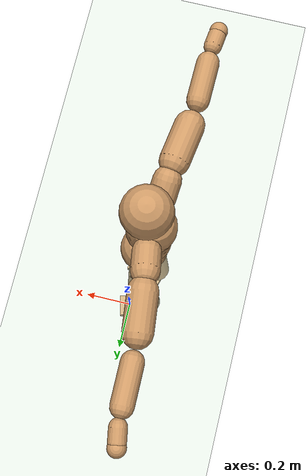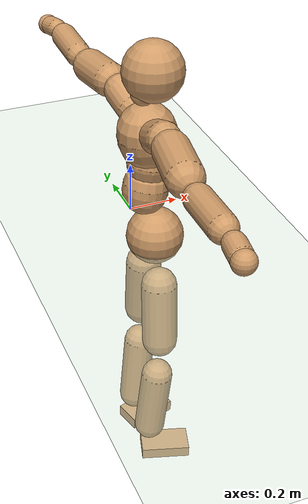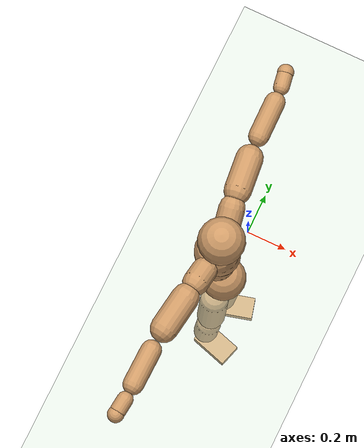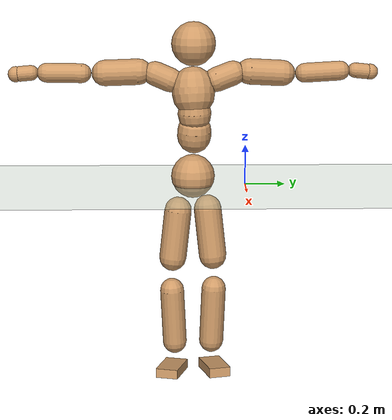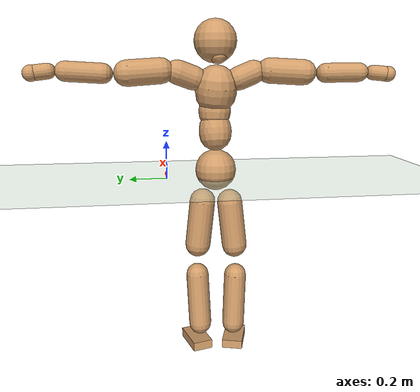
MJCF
<mujoco model="humanoid">
  <compiler coordinate="local"/>
  <default>
    <joint damping="0.0" armature="0.01" stiffness="0.0" limited="true"/>
    <geom conaffinity="1" condim="3" contype="7" margin="0.001" rgba="0.8 0.6 .4 1"/>
  </default>
  <asset>
    <texture type="skybox" builtin="gradient" rgb1=".4 .5 .6" rgb2="0 0 0" width="100" height="100"/>
    <texture builtin="flat" height="1278" mark="cross" markrgb="1 1 1" name="texgeom" random="0.01" rgb1="0.8 0.6 0.4" rgb2="0.8 0.6 0.4" type="cube" width="127"/>
    <texture builtin="checker" height="100" name="texplane" rgb1="0 0 0" rgb2="0.8 0.8 0.8" type="2d" width="100"/>
    <material name="MatPlane" reflectance="0.5" shininess="1" specular="1" texrepeat="60 60" texture="texplane"/>
    <material name="geom" texture="texgeom" texuniform="true"/>
  </asset>
  <worldbody>
    <light cutoff="100" diffuse="1 1 1" dir="-0 0 -1.3" directional="true" exponent="1" pos="0 0 1.3" specular=".1 .1 .1"/>
    <geom conaffinity="1" condim="3" name="floor" pos="0 0 0" rgba="0.8 0.9 0.8 1" size="100 100 .2" type="plane" material="MatPlane"/>
    <body name="Pelvis" pos="-0.0031 -0.263 0.0435">
      <freejoint name="Pelvis"/>
      <geom type="sphere" contype="1" conaffinity="1" density="500" size="0.1096" pos="0.0000 0.0000 0.0000" name="Pelvis"/>
      <body name="L_Hip" pos="-0.0138 0.0655 -0.0891">
        <joint name="L_Hip_x" type="hinge" pos="0 0 0" axis="1 0 0" stiffness="800" damping="80" armature="0.02" range="-180.0000 180.0000"/>
        <joint name="L_Hip_y" type="hinge" pos="0 0 0" axis="0 1 0" stiffness="800" damping="80" armature="0.02" range="-180.0000 180.0000"/>
        <joint name="L_Hip_z" type="hinge" pos="0 0 0" axis="0 0 1" stiffness="800" damping="80" armature="0.02" range="-180.0000 180.0000"/>
        <geom type="capsule" contype="1" conaffinity="1" density="500" fromto="0.0015 0.0089 -0.0819 0.0058 0.0354 -0.3275" size="0.0692" name="L_Hip"/>
        <body name="L_Knee" pos="0.0073 0.0443 -0.4093">
          <joint name="L_Knee_x" type="hinge" pos="0 0 0" axis="1 0 0" stiffness="800" damping="80" armature="0.02" range="-180.0000 180.0000"/>
          <joint name="L_Knee_y" type="hinge" pos="0 0 0" axis="0 1 0" stiffness="800" damping="80" armature="0.02" range="-180.0000 180.0000"/>
          <joint name="L_Knee_z" type="hinge" pos="0 0 0" axis="0 0 1" stiffness="800" damping="80" armature="0.02" range="-180.0000 180.0000"/>
          <geom type="capsule" contype="1" conaffinity="1" density="500" fromto="-0.0086 -0.0036 -0.0949 -0.0342 -0.0146 -0.3797" size="0.0616" name="L_Knee"/>
          <body name="L_Ankle" pos="-0.0428 -0.0182 -0.4747">
            <joint name="L_Ankle_x" type="hinge" pos="0 0 0" axis="1 0 0" stiffness="800" damping="80" armature="0.02" range="-180.0000 180.0000"/>
            <joint name="L_Ankle_y" type="hinge" pos="0 0 0" axis="0 1 0" stiffness="800" damping="80" armature="0.02" range="-180.0000 180.0000"/>
            <joint name="L_Ankle_z" type="hinge" pos="0 0 0" axis="0 0 1" stiffness="800" damping="80" armature="0.02" range="-180.0000 180.0000"/>
            <geom type="box" contype="1" conaffinity="1" density="500" pos="0.0674 0.0183 -0.0327" size="0.0994 0.0545 0.0245" quat="0.9913 0.0000 0.0000 0.1320" name="L_Ankle"/>
            <body name="L_Toe" pos="0.1347 0.0365 -0.0654">
              <joint name="L_Toe_x" type="hinge" pos="0 0 0" axis="1 0 0" stiffness="500" damping="50" armature="0.02" range="-180.0000 180.0000"/>
              <joint name="L_Toe_y" type="hinge" pos="0 0 0" axis="0 1 0" stiffness="500" damping="50" armature="0.02" range="-180.0000 180.0000"/>
              <joint name="L_Toe_z" type="hinge" pos="0 0 0" axis="0 0 1" stiffness="500" damping="50" armature="0.02" range="-180.0000 180.0000"/>
              <geom type="box" contype="1" conaffinity="1" density="500" pos="0.0000 0.0000 0.0316" size="0.0011 0.0027 0.0012" quat="0.9906 0.0000 0.0000 0.1369" name="L_Toe"/>
            </body>
          </body>
        </body>
      </body>
      <body name="R_Hip" pos="-0.0092 -0.0669 -0.0977">
        <joint name="R_Hip_x" type="hinge" pos="0 0 0" axis="1 0 0" stiffness="800" damping="80" armature="0.02" range="-180.0000 180.0000"/>
        <joint name="R_Hip_y" type="hinge" pos="0 0 0" axis="0 1 0" stiffness="800" damping="80" armature="0.02" range="-180.0000 180.0000"/>
        <joint name="R_Hip_z" type="hinge" pos="0 0 0" axis="0 0 1" stiffness="800" damping="80" armature="0.02" range="-180.0000 180.0000"/>
        <geom type="capsule" contype="1" conaffinity="1" density="500" fromto="-0.0013 -0.0089 -0.0825 -0.0052 -0.0357 -0.3298" size="0.0686" name="R_Hip"/>
        <body name="R_Knee" pos="-0.0065 -0.0446 -0.4123">
          <joint name="R_Knee_x" type="hinge" pos="0 0 0" axis="1 0 0" stiffness="800" damping="80" armature="0.02" range="-180.0000 180.0000"/>
          <joint name="R_Knee_y" type="hinge" pos="0 0 0" axis="0 1 0" stiffness="800" damping="80" armature="0.02" range="-180.0000 180.0000"/>
          <joint name="R_Knee_z" type="hinge" pos="0 0 0" axis="0 0 1" stiffness="800" damping="80" armature="0.02" range="-180.0000 180.0000"/>
          <geom type="capsule" contype="1" conaffinity="1" density="500" fromto="-0.0078 0.0045 -0.0938 -0.0310 0.0182 -0.3752" size="0.061" name="R_Knee"/>
          <body name="R_Ankle" pos="-0.0388 0.0227 -0.469">
            <joint name="R_Ankle_x" type="hinge" pos="0 0 0" axis="1 0 0" stiffness="800" damping="80" armature="0.02" range="-180.0000 180.0000"/>
            <joint name="R_Ankle_y" type="hinge" pos="0 0 0" axis="0 1 0" stiffness="800" damping="80" armature="0.02" range="-180.0000 180.0000"/>
            <joint name="R_Ankle_z" type="hinge" pos="0 0 0" axis="0 0 1" stiffness="800" damping="80" armature="0.02" range="-180.0000 180.0000"/>
            <geom type="box" contype="1" conaffinity="1" density="500" pos="0.0712 -0.0210 -0.0337" size="0.0979 0.0571 0.0235" quat="0.9898 0.0000 0.0000 -0.1427" name="R_Ankle"/>
            <body name="R_Toe" pos="0.1424 -0.0419 -0.0675">
              <joint name="R_Toe_x" type="hinge" pos="0 0 0" axis="1 0 0" stiffness="500" damping="50" armature="0.02" range="-180.0000 180.0000"/>
              <joint name="R_Toe_y" type="hinge" pos="0 0 0" axis="0 1 0" stiffness="500" damping="50" armature="0.02" range="-180.0000 180.0000"/>
              <joint name="R_Toe_z" type="hinge" pos="0 0 0" axis="0 0 1" stiffness="500" damping="50" armature="0.02" range="-180.0000 180.0000"/>
              <geom type="box" contype="1" conaffinity="1" density="500" pos="0.0000 0.0000 0.0340" size="0.0012 0.0027 0.0012" quat="0.9909 0.0000 0.0000 -0.1345" name="R_Toe"/>
            </body>
          </body>
        </body>
      </body>
      <body name="Torso" pos="-0.0501 0.0049 0.1376">
        <joint name="Torso_x" type="hinge" pos="0 0 0" axis="1 0 0" stiffness="1000" damping="100" armature="0.02" range="-180.0000 180.0000"/>
        <joint name="Torso_y" type="hinge" pos="0 0 0" axis="0 1 0" stiffness="1000" damping="100" armature="0.02" range="-180.0000 180.0000"/>
        <joint name="Torso_z" type="hinge" pos="0 0 0" axis="0 0 1" stiffness="1000" damping="100" armature="0.02" range="-180.0000 180.0000"/>
        <geom type="capsule" contype="1" conaffinity="1" density="500" fromto="0.0154 0.0029 0.0885 0.0103 0.0019 0.0590" size="0.085374" name="Torso"/>
        <body name="Spine" pos="0.0257 0.0048 0.1474">
          <joint name="Spine_x" type="hinge" pos="0 0 0" axis="1 0 0" stiffness="1000" damping="100" armature="0.02" range="-180.0000 180.0000"/>
          <joint name="Spine_y" type="hinge" pos="0 0 0" axis="0 1 0" stiffness="1000" damping="100" armature="0.02" range="-180.0000 180.0000"/>
          <joint name="Spine_z" type="hinge" pos="0 0 0" axis="0 0 1" stiffness="1000" damping="100" armature="0.02" range="-180.0000 180.0000"/>
          <geom type="capsule" contype="1" conaffinity="1" density="500" fromto="0.0028 -0.0016 0.0364 0.0019 -0.0011 0.0243" size="0.084351" name="Spine"/>
          <body name="Chest" pos="0.0047 -0.0027 0.0607">
            <joint name="Chest_x" type="hinge" pos="0 0 0" axis="1 0 0" stiffness="1000" damping="100" armature="0.02" range="-180.0000 180.0000"/>
            <joint name="Chest_y" type="hinge" pos="0 0 0" axis="0 1 0" stiffness="1000" damping="100" armature="0.02" range="-180.0000 180.0000"/>
            <joint name="Chest_z" type="hinge" pos="0 0 0" axis="0 0 1" stiffness="1000" damping="100" armature="0.02" range="-180.0000 180.0000"/>
            <geom type="capsule" contype="1" conaffinity="1" density="500" fromto="-0.0181 -0.0049 0.0981 -0.0120 -0.0033 0.0654" size="0.108252" name="Chest"/>
            <body name="Neck" pos="-0.0459 -0.0145 0.2368">
              <joint name="Neck_x" type="hinge" pos="0 0 0" axis="1 0 0" stiffness="500" damping="50" armature="0.02" range="-180.0000 180.0000"/>
              <joint name="Neck_y" type="hinge" pos="0 0 0" axis="0 1 0" stiffness="500" damping="50" armature="0.02" range="-180.0000 180.0000"/>
              <joint name="Neck_z" type="hinge" pos="0 0 0" axis="0 0 1" stiffness="500" damping="50" armature="0.02" range="-180.0000 180.0000"/>
              <geom type="capsule" contype="1" conaffinity="1" density="500" fromto="0.0098 0.0022 0.0172 0.0390 0.0086 0.0689" size="0.046314" name="Neck"/>
              <body name="Head" pos="0.0488 0.0108 0.0862">
                <joint name="Head_x" type="hinge" pos="0 0 0" axis="1 0 0" stiffness="500" damping="50" armature="0.02" range="-180.0000 180.0000"/>
                <joint name="Head_y" type="hinge" pos="0 0 0" axis="0 1 0" stiffness="500" damping="50" armature="0.02" range="-180.0000 180.0000"/>
                <joint name="Head_z" type="hinge" pos="0 0 0" axis="0 0 1" stiffness="500" damping="50" armature="0.02" range="-180.0000 180.0000"/>
                <geom type="sphere" contype="1" conaffinity="1" density="500" size="0.1112" pos="0.0000 0.0000 0.0000" name="Head"/>
              </body>
            </body>
            <body name="L_Thorax" pos="-0.0188 0.0834 0.1285">
              <joint name="L_Thorax_x" type="hinge" pos="0 0 0" axis="1 0 0" stiffness="500" damping="50" armature="0.02" range="-180.0000 180.0000"/>
              <joint name="L_Thorax_y" type="hinge" pos="0 0 0" axis="0 1 0" stiffness="500" damping="50" armature="0.02" range="-180.0000 180.0000"/>
              <joint name="L_Thorax_z" type="hinge" pos="0 0 0" axis="0 0 1" stiffness="500" damping="50" armature="0.02" range="-180.0000 180.0000"/>
              <geom type="capsule" contype="1" conaffinity="1" density="500" fromto="-0.0048 0.0280 0.0101 -0.0193 0.1120 0.0405" size="0.062" name="L_Thorax"/>
              <body name="L_Shoulder" pos="-0.0241 0.14 0.0507">
                <joint name="L_Shoulder_x" type="hinge" pos="0 0 0" axis="1 0 0" stiffness="500" damping="50" armature="0.02" range="-720.0000 720.0000"/>
                <joint name="L_Shoulder_y" type="hinge" pos="0 0 0" axis="0 1 0" stiffness="500" damping="50" armature="0.02" range="-720.0000 720.0000"/>
                <joint name="L_Shoulder_z" type="hinge" pos="0 0 0" axis="0 0 1" stiffness="500" damping="50" armature="0.02" range="-720.0000 720.0000"/>
                <geom type="capsule" contype="1" conaffinity="1" density="500" fromto="-0.0064 0.0555 -0.0038 -0.0254 0.2218 -0.0152" size="0.0653" name="L_Shoulder"/>
                <body name="L_Elbow" pos="-0.0318 0.2773 -0.0189">
                  <joint name="L_Elbow_x" type="hinge" pos="0 0 0" axis="1 0 0" stiffness="500" damping="50" armature="0.02" range="-720.0000 720.0000"/>
                  <joint name="L_Elbow_y" type="hinge" pos="0 0 0" axis="0 1 0" stiffness="500" damping="50" armature="0.02" range="-720.0000 720.0000"/>
                  <joint name="L_Elbow_z" type="hinge" pos="0 0 0" axis="0 0 1" stiffness="500" damping="50" armature="0.02" range="-720.0000 720.0000"/>
                  <geom type="capsule" contype="1" conaffinity="1" density="500" fromto="-0.0007 0.0591 0.0034 -0.0029 0.2366 0.0136" size="0.0492" name="L_Elbow"/>
                  <body name="L_Wrist" pos="-0.0036 0.2957 0.017">
                    <joint name="L_Wrist_x" type="hinge" pos="0 0 0" axis="1 0 0" stiffness="300" damping="30" armature="0.02" range="-180.0000 180.0000"/>
                    <joint name="L_Wrist_y" type="hinge" pos="0 0 0" axis="0 1 0" stiffness="300" damping="30" armature="0.02" range="-180.0000 180.0000"/>
                    <joint name="L_Wrist_z" type="hinge" pos="0 0 0" axis="0 0 1" stiffness="300" damping="30" armature="0.02" range="-180.0000 180.0000"/>
                    <geom type="capsule" contype="1" conaffinity="1" density="500" fromto="-0.0035 0.0193 -0.0024 -0.0138 0.0772 -0.0095" size="0.0382" name="L_Wrist"/>
                    <body name="L_Hand" pos="-0.0173 0.0966 -0.0119">
                      <joint name="L_Hand_x" type="hinge" pos="0 0 0" axis="1 0 0" stiffness="300" damping="30" armature="0.02" range="-180.0000 180.0000"/>
                      <joint name="L_Hand_y" type="hinge" pos="0 0 0" axis="0 1 0" stiffness="300" damping="30" armature="0.02" range="-180.0000 180.0000"/>
                      <joint name="L_Hand_z" type="hinge" pos="0 0 0" axis="0 0 1" stiffness="300" damping="30" armature="0.02" range="-180.0000 180.0000"/>
                      <geom type="sphere" contype="1" conaffinity="1" density="500" size="0.0396" pos="0.0000 0.0000 0.0000" name="L_Hand"/>
                    </body>
                  </body>
                </body>
              </body>
            </body>
            <body name="R_Thorax" pos="-0.0256 -0.0933 0.1254">
              <joint name="R_Thorax_x" type="hinge" pos="0 0 0" axis="1 0 0" stiffness="500" damping="50" armature="0.02" range="-180.0000 180.0000"/>
              <joint name="R_Thorax_y" type="hinge" pos="0 0 0" axis="0 1 0" stiffness="500" damping="50" armature="0.02" range="-180.0000 180.0000"/>
              <joint name="R_Thorax_z" type="hinge" pos="0 0 0" axis="0 0 1" stiffness="500" damping="50" armature="0.02" range="-180.0000 180.0000"/>
              <geom type="capsule" contype="1" conaffinity="1" density="500" fromto="-0.0024 -0.0256 0.0107 -0.0097 -0.1024 0.0430" size="0.0612" name="R_Thorax"/>
              <body name="R_Shoulder" pos="-0.0121 -0.128 0.0537">
                <joint name="R_Shoulder_x" type="hinge" pos="0 0 0" axis="1 0 0" stiffness="500" damping="50" armature="0.02" range="-720.0000 720.0000"/>
                <joint name="R_Shoulder_y" type="hinge" pos="0 0 0" axis="0 1 0" stiffness="500" damping="50" armature="0.02" range="-720.0000 720.0000"/>
                <joint name="R_Shoulder_z" type="hinge" pos="0 0 0" axis="0 0 1" stiffness="500" damping="50" armature="0.02" range="-720.0000 720.0000"/>
                <geom type="capsule" contype="1" conaffinity="1" density="500" fromto="-0.0083 -0.0571 -0.0031 -0.0331 -0.2283 -0.0125" size="0.0655" name="R_Shoulder"/>
                <body name="R_Elbow" pos="-0.0414 -0.2854 -0.0157">
                  <joint name="R_Elbow_x" type="hinge" pos="0 0 0" axis="1 0 0" stiffness="500" damping="50" armature="0.02" range="-720.0000 720.0000"/>
                  <joint name="R_Elbow_y" type="hinge" pos="0 0 0" axis="0 1 0" stiffness="500" damping="50" armature="0.02" range="-720.0000 720.0000"/>
                  <joint name="R_Elbow_z" type="hinge" pos="0 0 0" axis="0 0 1" stiffness="500" damping="50" armature="0.02" range="-720.0000 720.0000"/>
                  <geom type="capsule" contype="1" conaffinity="1" density="500" fromto="-0.0009 -0.0588 0.0009 -0.0038 -0.2350 0.0036" size="0.0493" name="R_Elbow"/>
                  <body name="R_Wrist" pos="-0.0047 -0.2938 0.0045">
                    <joint name="R_Wrist_x" type="hinge" pos="0 0 0" axis="1 0 0" stiffness="300" damping="30" armature="0.02" range="-180.0000 180.0000"/>
                    <joint name="R_Wrist_y" type="hinge" pos="0 0 0" axis="0 1 0" stiffness="300" damping="30" armature="0.02" range="-180.0000 180.0000"/>
                    <joint name="R_Wrist_z" type="hinge" pos="0 0 0" axis="0 0 1" stiffness="300" damping="30" armature="0.02" range="-180.0000 180.0000"/>
                    <geom type="capsule" contype="1" conaffinity="1" density="500" fromto="-0.0022 -0.0196 -0.0019 -0.0088 -0.0783 -0.0077" size="0.0385" name="R_Wrist"/>
                    <body name="R_Hand" pos="-0.011 -0.0979 -0.0097">
                      <joint name="R_Hand_x" type="hinge" pos="0 0 0" axis="1 0 0" stiffness="300" damping="30" armature="0.02" range="-180.0000 180.0000"/>
                      <joint name="R_Hand_y" type="hinge" pos="0 0 0" axis="0 1 0" stiffness="300" damping="30" armature="0.02" range="-180.0000 180.0000"/>
                      <joint name="R_Hand_z" type="hinge" pos="0 0 0" axis="0 0 1" stiffness="300" damping="30" armature="0.02" range="-180.0000 180.0000"/>
                      <geom type="sphere" contype="1" conaffinity="1" density="500" size="0.0398" pos="0.0000 0.0000 0.0000" name="R_Hand"/>
                    </body>
                  </body>
                </body>
              </body>
            </body>
          </body>
        </body>
      </body>
    </body>
  </worldbody>
  <actuator>
    <motor name="L_Hip_x" joint="L_Hip_x" gear="500"/>
    <motor name="L_Hip_y" joint="L_Hip_y" gear="500"/>
    <motor name="L_Hip_z" joint="L_Hip_z" gear="500"/>
    <motor name="L_Knee_x" joint="L_Knee_x" gear="500"/>
    <motor name="L_Knee_y" joint="L_Knee_y" gear="500"/>
    <motor name="L_Knee_z" joint="L_Knee_z" gear="500"/>
    <motor name="L_Ankle_x" joint="L_Ankle_x" gear="500"/>
    <motor name="L_Ankle_y" joint="L_Ankle_y" gear="500"/>
    <motor name="L_Ankle_z" joint="L_Ankle_z" gear="500"/>
    <motor name="L_Toe_x" joint="L_Toe_x" gear="500"/>
    <motor name="L_Toe_y" joint="L_Toe_y" gear="500"/>
    <motor name="L_Toe_z" joint="L_Toe_z" gear="500"/>
    <motor name="R_Hip_x" joint="R_Hip_x" gear="500"/>
    <motor name="R_Hip_y" joint="R_Hip_y" gear="500"/>
    <motor name="R_Hip_z" joint="R_Hip_z" gear="500"/>
    <motor name="R_Knee_x" joint="R_Knee_x" gear="500"/>
    <motor name="R_Knee_y" joint="R_Knee_y" gear="500"/>
    <motor name="R_Knee_z" joint="R_Knee_z" gear="500"/>
    <motor name="R_Ankle_x" joint="R_Ankle_x" gear="500"/>
    <motor name="R_Ankle_y" joint="R_Ankle_y" gear="500"/>
    <motor name="R_Ankle_z" joint="R_Ankle_z" gear="500"/>
    <motor name="R_Toe_x" joint="R_Toe_x" gear="500"/>
    <motor name="R_Toe_y" joint="R_Toe_y" gear="500"/>
    <motor name="R_Toe_z" joint="R_Toe_z" gear="500"/>
    <motor name="Torso_x" joint="Torso_x" gear="500"/>
    <motor name="Torso_y" joint="Torso_y" gear="500"/>
    <motor name="Torso_z" joint="Torso_z" gear="500"/>
    <motor name="Spine_x" joint="Spine_x" gear="500"/>
    <motor name="Spine_y" joint="Spine_y" gear="500"/>
    <motor name="Spine_z" joint="Spine_z" gear="500"/>
    <motor name="Chest_x" joint="Chest_x" gear="500"/>
    <motor name="Chest_y" joint="Chest_y" gear="500"/>
    <motor name="Chest_z" joint="Chest_z" gear="500"/>
    <motor name="Neck_x" joint="Neck_x" gear="500"/>
    <motor name="Neck_y" joint="Neck_y" gear="500"/>
    <motor name="Neck_z" joint="Neck_z" gear="500"/>
    <motor name="Head_x" joint="Head_x" gear="500"/>
    <motor name="Head_y" joint="Head_y" gear="500"/>
    <motor name="Head_z" joint="Head_z" gear="500"/>
    <motor name="L_Thorax_x" joint="L_Thorax_x" gear="500"/>
    <motor name="L_Thorax_y" joint="L_Thorax_y" gear="500"/>
    <motor name="L_Thorax_z" joint="L_Thorax_z" gear="500"/>
    <motor name="L_Shoulder_x" joint="L_Shoulder_x" gear="500"/>
    <motor name="L_Shoulder_y" joint="L_Shoulder_y" gear="500"/>
    <motor name="L_Shoulder_z" joint="L_Shoulder_z" gear="500"/>
    <motor name="L_Elbow_x" joint="L_Elbow_x" gear="500"/>
    <motor name="L_Elbow_y" joint="L_Elbow_y" gear="500"/>
    <motor name="L_Elbow_z" joint="L_Elbow_z" gear="500"/>
    <motor name="L_Wrist_x" joint="L_Wrist_x" gear="500"/>
    <motor name="L_Wrist_y" joint="L_Wrist_y" gear="500"/>
    <motor name="L_Wrist_z" joint="L_Wrist_z" gear="500"/>
    <motor name="L_Hand_x" joint="L_Hand_x" gear="500"/>
    <motor name="L_Hand_y" joint="L_Hand_y" gear="500"/>
    <motor name="L_Hand_z" joint="L_Hand_z" gear="500"/>
    <motor name="R_Thorax_x" joint="R_Thorax_x" gear="500"/>
    <motor name="R_Thorax_y" joint="R_Thorax_y" gear="500"/>
    <motor name="R_Thorax_z" joint="R_Thorax_z" gear="500"/>
    <motor name="R_Shoulder_x" joint="R_Shoulder_x" gear="500"/>
    <motor name="R_Shoulder_y" joint="R_Shoulder_y" gear="500"/>
    <motor name="R_Shoulder_z" joint="R_Shoulder_z" gear="500"/>
    <motor name="R_Elbow_x" joint="R_Elbow_x" gear="500"/>
    <motor name="R_Elbow_y" joint="R_Elbow_y" gear="500"/>
    <motor name="R_Elbow_z" joint="R_Elbow_z" gear="500"/>
    <motor name="R_Wrist_x" joint="R_Wrist_x" gear="500"/>
    <motor name="R_Wrist_y" joint="R_Wrist_y" gear="500"/>
    <motor name="R_Wrist_z" joint="R_Wrist_z" gear="500"/>
    <motor name="R_Hand_x" joint="R_Hand_x" gear="500"/>
    <motor name="R_Hand_y" joint="R_Hand_y" gear="500"/>
    <motor name="R_Hand_z" joint="R_Hand_z" gear="500"/>
  </actuator>
  <contact>
    <exclude body1="Torso" body2="Chest"/>
    <exclude body1="Head" body2="Chest"/>
    <exclude body1="R_Knee" body2="R_Toe"/>
    <exclude body1="R_Knee" body2="L_Ankle"/>
    <exclude body1="R_Knee" body2="L_Toe"/>
    <exclude body1="L_Knee" body2="L_Toe"/>
    <exclude body1="L_Knee" body2="R_Ankle"/>
    <exclude body1="L_Knee" body2="R_Toe"/>
    <exclude body1="L_Shoulder" body2="Chest"/>
    <exclude body1="R_Shoulder" body2="Chest"/>
  </contact>
  <sensor/>
  <size njmax="700" nconmax="700"/>
</mujoco>
